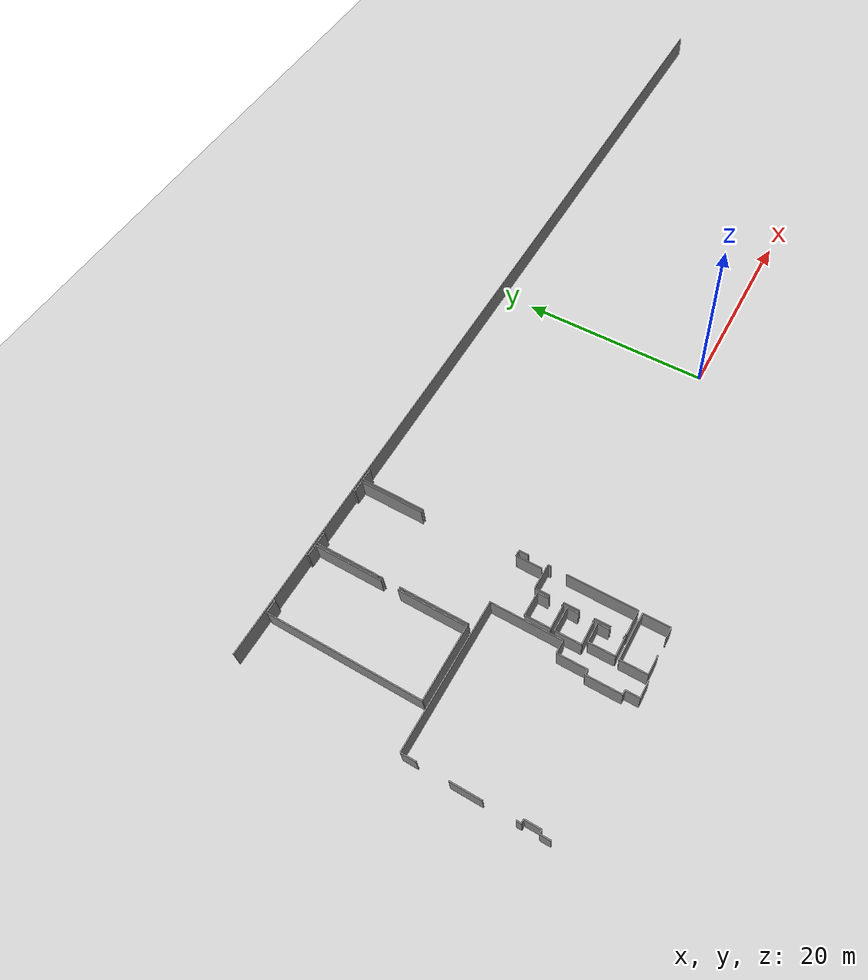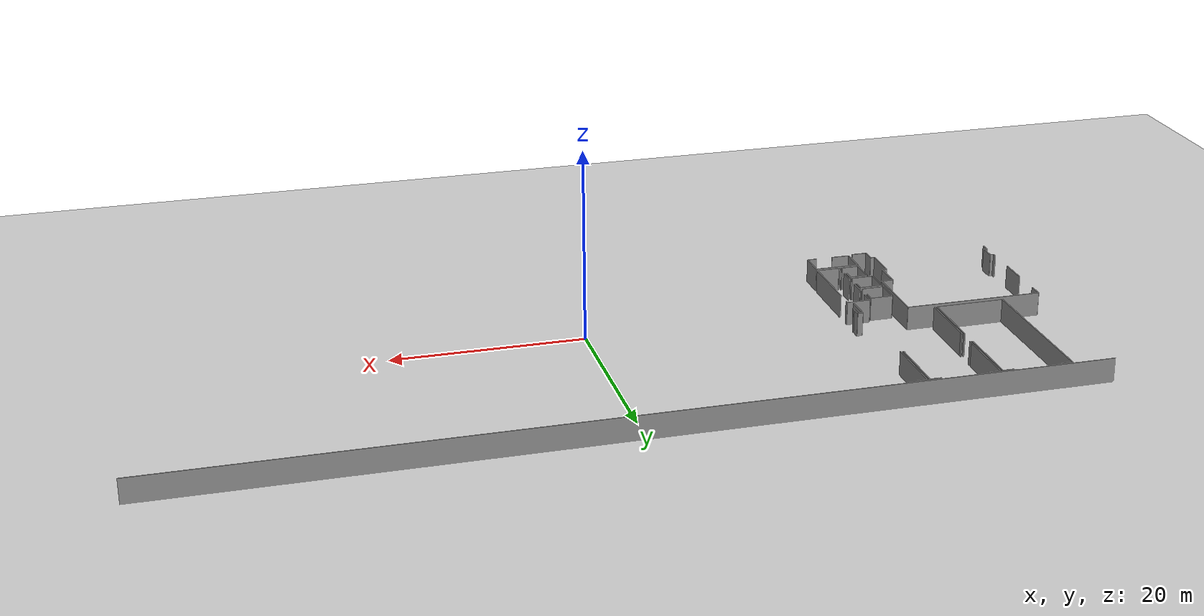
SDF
<sdf version="1.6">
 <world name="default">
  <model name="ground_plane">
   <static>1</static>
   <link name="link">
    <collision name="collision">
     <geometry><plane><normal>0 0 1</normal><size>100 100</size></plane></geometry>
     <surface><friction><ode><mu>100</mu><mu2>50</mu2></ode></friction></surface>
    </collision>
    <visual name="visual">
     <cast_shadows>0</cast_shadows>
     <geometry><plane><normal>0 0 1</normal><size>100 100</size></plane></geometry>
     <material>
      <script><uri>file://media/materials/scripts/gazebo.material</uri><name>Gazebo/Grey</name></script>
     </material>
    </visual>
   </link>
  </model>
  <model name="50045230">
   <static>1</static>
   <link name="Wall_0">
    <collision name="Wall_0_Collision">
     <geometry><box><size>16.1235034977 0.1 2.5</size></box></geometry>
     <pose>8.06175174883 0 1.25 0 0 0</pose>
    </collision>
    <visual name="Wall_0_Visual">
     <pose>8.06175174883 0 1.25 0 0 0</pose>
     <geometry><box><size>16.1235034977 0.1 2.5</size></box></geometry>
     <material>
      <script><uri>file://media/materials/scripts/gazebo.material</uri><name>Gazebo/Grey</name></script>
      <ambient>1 1 1 1</ambient>
     </material>
    </visual>
    <pose>4.35461551157 -16.3647212665 0 0 0 1.57079632679</pose>
   </link>
   <link name="Wall_1">
    <collision name="Wall_1_Collision">
     <geometry><box><size>1.18069750022 0.1 2.5</size></box></geometry>
     <pose>0.590348750111 0 1.25 0 0 0</pose>
    </collision>
    <visual name="Wall_1_Visual">
     <pose>0.590348750111 0 1.25 0 0 0</pose>
     <geometry><box><size>1.18069750022 0.1 2.5</size></box></geometry>
     <material>
      <script><uri>file://media/materials/scripts/gazebo.material</uri><name>Gazebo/Grey</name></script>
      <ambient>1 1 1 1</ambient>
     </material>
    </visual>
    <pose>4.35461551157 -0.241217768863 0 0 0 0.0</pose>
   </link>
   <link name="Wall_2">
    <collision name="Wall_2_Collision">
     <geometry><box><size>0.228522096817 0.1 2.5</size></box></geometry>
     <pose>0.114261048409 0 1.25 0 0 0</pose>
    </collision>
    <visual name="Wall_2_Visual">
     <pose>0.114261048409 0 1.25 0 0 0</pose>
     <geometry><box><size>0.228522096817 0.1 2.5</size></box></geometry>
     <material>
      <script><uri>file://media/materials/scripts/gazebo.material</uri><name>Gazebo/Grey</name></script>
      <ambient>1 1 1 1</ambient>
     </material>
    </visual>
    <pose>5.53531301179 -0.241217768863 0 0 0 1.57079632679</pose>
   </link>
   <link name="Wall_3">
    <collision name="Wall_3_Collision">
     <geometry><box><size>0.23207688499 0.1 2.5</size></box></geometry>
     <pose>0.116038442495 0 1.25 0 0 0</pose>
    </collision>
    <visual name="Wall_3_Visual">
     <pose>0.116038442495 0 1.25 0 0 0</pose>
     <geometry><box><size>0.23207688499 0.1 2.5</size></box></geometry>
     <material>
      <script><uri>file://media/materials/scripts/gazebo.material</uri><name>Gazebo/Grey</name></script>
      <ambient>1 1 1 1</ambient>
     </material>
    </visual>
    <pose>10.4685972552 -0.0126956720454 0 0 0 -1.57079632679</pose>
   </link>
   <link name="Wall_4">
    <collision name="Wall_4_Collision">
     <geometry><box><size>1.14362613785 0.1 2.5</size></box></geometry>
     <pose>0.571813068925 0 1.25 0 0 0</pose>
    </collision>
    <visual name="Wall_4_Visual">
     <pose>0.571813068925 0 1.25 0 0 0</pose>
     <geometry><box><size>1.14362613785 0.1 2.5</size></box></geometry>
     <material>
      <script><uri>file://media/materials/scripts/gazebo.material</uri><name>Gazebo/Grey</name></script>
      <ambient>1 1 1 1</ambient>
     </material>
    </visual>
    <pose>10.4685972552 -0.244772557035 0 0 0 0.0</pose>
   </link>
   <link name="Wall_5">
    <collision name="Wall_5_Collision">
     <geometry><box><size>7.14550509731 0.1 2.5</size></box></geometry>
     <pose>3.57275254866 0 1.25 0 0 0</pose>
    </collision>
    <visual name="Wall_5_Visual">
     <pose>3.57275254866 0 1.25 0 0 0</pose>
     <geometry><box><size>7.14550509731 0.1 2.5</size></box></geometry>
     <material>
      <script><uri>file://media/materials/scripts/gazebo.material</uri><name>Gazebo/Grey</name></script>
      <ambient>1 1 1 1</ambient>
     </material>
    </visual>
    <pose>11.612223393 -0.244772557035 0 0 0 -1.57079632679</pose>
   </link>
   <link name="Wall_6">
    <collision name="Wall_6_Collision">
     <geometry><box><size>7.14321987634 0.1 2.5</size></box></geometry>
     <pose>3.57160993817 0 1.25 0 0 0</pose>
    </collision>
    <visual name="Wall_6_Visual">
     <pose>3.57160993817 0 1.25 0 0 0</pose>
     <geometry><box><size>7.14321987634 0.1 2.5</size></box></geometry>
     <material>
      <script><uri>file://media/materials/scripts/gazebo.material</uri><name>Gazebo/Grey</name></script>
      <ambient>1 1 1 1</ambient>
     </material>
    </visual>
    <pose>11.612223393 -9.19166656087 0 0 0 -1.57079632679</pose>
   </link>
   <link name="Wall_7">
    <collision name="Wall_7_Collision">
     <geometry><box><size>7.25766920425 0.1 2.5</size></box></geometry>
     <pose>3.62883460212 0 1.25 0 0 0</pose>
    </collision>
    <visual name="Wall_7_Visual">
     <pose>3.62883460212 0 1.25 0 0 0</pose>
     <geometry><box><size>7.25766920425 0.1 2.5</size></box></geometry>
     <material>
      <script><uri>file://media/materials/scripts/gazebo.material</uri><name>Gazebo/Grey</name></script>
      <ambient>1 1 1 1</ambient>
     </material>
    </visual>
    <pose>11.612223393 -16.3348864372 0 0 0 -3.13748184163</pose>
   </link>
   <link name="Wall_8">
    <collision name="Wall_8_Collision">
     <geometry><box><size>0.450061574009 0.1 2.5</size></box></geometry>
     <pose>0.225030787005 0 1.25 0 0 0</pose>
    </collision>
    <visual name="Wall_8_Visual">
     <pose>0.225030787005 0 1.25 0 0 0</pose>
     <geometry><box><size>0.450061574009 0.1 2.5</size></box></geometry>
     <material>
      <script><uri>file://media/materials/scripts/gazebo.material</uri><name>Gazebo/Grey</name></script>
      <ambient>1 1 1 1</ambient>
     </material>
    </visual>
    <pose>11.8608046517 -9.64020465423 0 0 0 1.57079632679</pose>
   </link>
   <link name="Wall_9">
    <collision name="Wall_9_Collision">
     <geometry><box><size>0.403976284485 0.1 2.5</size></box></geometry>
     <pose>0.201988142242 0 1.25 0 0 0</pose>
    </collision>
    <visual name="Wall_9_Visual">
     <pose>0.201988142242 0 1.25 0 0 0</pose>
     <geometry><box><size>0.403976284485 0.1 2.5</size></box></geometry>
     <material>
      <script><uri>file://media/materials/scripts/gazebo.material</uri><name>Gazebo/Grey</name></script>
      <ambient>1 1 1 1</ambient>
     </material>
    </visual>
    <pose>11.8608046517 -7.42138205086 0 0 0 1.57079632679</pose>
   </link>
   <link name="Wall_30">
    <collision name="Wall_30_Collision">
     <geometry><box><size>6.68896873056 0.1 2.5</size></box></geometry>
     <pose>3.34448436528 0 1.25 0 0 0</pose>
    </collision>
    <visual name="Wall_30_Visual">
     <pose>3.34448436528 0 1.25 0 0 0</pose>
     <geometry><box><size>6.68896873056 0.1 2.5</size></box></geometry>
     <material>
      <script><uri>file://media/materials/scripts/gazebo.material</uri><name>Gazebo/Grey</name></script>
      <ambient>1 1 1 1</ambient>
     </material>
    </visual>
    <pose>11.869310752 -6.92904388894 0 0 0 1.57079632679</pose>
   </link>
   <link name="Wall_31">
    <collision name="Wall_31_Collision">
     <geometry><box><size>1.11658435639 0.1 2.5</size></box></geometry>
     <pose>0.558292178196 0 1.25 0 0 0</pose>
    </collision>
    <visual name="Wall_31_Visual">
     <pose>0.558292178196 0 1.25 0 0 0</pose>
     <geometry><box><size>1.11658435639 0.1 2.5</size></box></geometry>
     <material>
      <script><uri>file://media/materials/scripts/gazebo.material</uri><name>Gazebo/Grey</name></script>
      <ambient>1 1 1 1</ambient>
     </material>
    </visual>
    <pose>11.869310752 -0.240075158379 0 0 0 0.0</pose>
   </link>
   <link name="Wall_32">
    <collision name="Wall_32_Collision">
     <geometry><box><size>0.232330798431 0.1 2.5</size></box></geometry>
     <pose>0.116165399215 0 1.25 0 0 0</pose>
    </collision>
    <visual name="Wall_32_Visual">
     <pose>0.116165399215 0 1.25 0 0 0</pose>
     <geometry><box><size>0.232330798431 0.1 2.5</size></box></geometry>
     <material>
      <script><uri>file://media/materials/scripts/gazebo.material</uri><name>Gazebo/Grey</name></script>
      <ambient>1 1 1 1</ambient>
     </material>
    </visual>
    <pose>12.9858951084 -0.240075158379 0 0 0 1.57079632679</pose>
   </link>
   <link name="Wall_33">
    <collision name="Wall_33_Collision">
     <geometry><box><size>0.253913440908 0.1 2.5</size></box></geometry>
     <pose>0.126956720454 0 1.25 0 0 0</pose>
    </collision>
    <visual name="Wall_33_Visual">
     <pose>0.126956720454 0 1.25 0 0 0</pose>
     <geometry><box><size>0.253913440908 0.1 2.5</size></box></geometry>
     <material>
      <script><uri>file://media/materials/scripts/gazebo.material</uri><name>Gazebo/Grey</name></script>
      <ambient>1 1 1 1</ambient>
     </material>
    </visual>
    <pose>17.9011514975 -0.00774435994769 0 0 0 -1.57079632679</pose>
   </link>
   <link name="Wall_34">
    <collision name="Wall_34_Collision">
     <geometry><box><size>1.14540353194 0.1 2.5</size></box></geometry>
     <pose>0.572701765968 0 1.25 0 0 0</pose>
    </collision>
    <visual name="Wall_34_Visual">
     <pose>0.572701765968 0 1.25 0 0 0</pose>
     <geometry><box><size>1.14540353194 0.1 2.5</size></box></geometry>
     <material>
      <script><uri>file://media/materials/scripts/gazebo.material</uri><name>Gazebo/Grey</name></script>
      <ambient>1 1 1 1</ambient>
     </material>
    </visual>
    <pose>17.9011514975 -0.261657800856 0 0 0 0.0</pose>
   </link>
   <link name="Wall_35">
    <collision name="Wall_35_Collision">
     <geometry><box><size>6.66738811994 0.1 2.5</size></box></geometry>
     <pose>3.33369405997 0 1.25 0 0 0</pose>
    </collision>
    <visual name="Wall_35_Visual">
     <pose>3.33369405997 0 1.25 0 0 0</pose>
     <geometry><box><size>6.66738811994 0.1 2.5</size></box></geometry>
     <material>
      <script><uri>file://media/materials/scripts/gazebo.material</uri><name>Gazebo/Grey</name></script>
      <ambient>1 1 1 1</ambient>
     </material>
    </visual>
    <pose>19.0465550294 -0.261657800856 0 0 0 -1.57157702622</pose>
   </link>
   <link name="Wall_36">
    <collision name="Wall_36_Collision">
     <geometry><box><size>6.70242614293 0.1 2.5</size></box></geometry>
     <pose>3.35121307146 0 1.25 0 0 0</pose>
    </collision>
    <visual name="Wall_36_Visual">
     <pose>3.35121307146 0 1.25 0 0 0</pose>
     <geometry><box><size>6.70242614293 0.1 2.5</size></box></geometry>
     <material>
      <script><uri>file://media/materials/scripts/gazebo.material</uri><name>Gazebo/Grey</name></script>
      <ambient>1 1 1 1</ambient>
     </material>
    </visual>
    <pose>19.3159571902 -6.95722828088 0 0 0 1.57079632679</pose>
   </link>
   <link name="Wall_37">
    <collision name="Wall_37_Collision">
     <geometry><box><size>1.11493391903 0.1 2.5</size></box></geometry>
     <pose>0.557466959514 0 1.25 0 0 0</pose>
    </collision>
    <visual name="Wall_37_Visual">
     <pose>0.557466959514 0 1.25 0 0 0</pose>
     <geometry><box><size>1.11493391903 0.1 2.5</size></box></geometry>
     <material>
      <script><uri>file://media/materials/scripts/gazebo.material</uri><name>Gazebo/Grey</name></script>
      <ambient>1 1 1 1</ambient>
     </material>
    </visual>
    <pose>19.3159571902 -0.254802137951 0 0 0 0.0</pose>
   </link>
   <link name="Wall_135">
    <collision name="Wall_135_Collision">
     <geometry><box><size>6.65253215179 0.1 2.5</size></box></geometry>
     <pose>3.32626607589 0 1.25 0 0 0</pose>
    </collision>
    <visual name="Wall_135_Visual">
     <pose>3.32626607589 0 1.25 0 0 0</pose>
     <geometry><box><size>6.65253215179 0.1 2.5</size></box></geometry>
     <material>
      <script><uri>file://media/materials/scripts/gazebo.material</uri><name>Gazebo/Grey</name></script>
      <ambient>1 1 1 1</ambient>
     </material>
    </visual>
    <pose>11.8597889979 -16.3497403735 0 0 0 1.57079632679</pose>
   </link>
   <link name="Wall_140">
    <collision name="Wall_140_Collision">
     <geometry><box><size>1.01565376363 0.1 2.5</size></box></geometry>
     <pose>0.507826881816 0 1.25 0 0 0</pose>
    </collision>
    <visual name="Wall_140_Visual">
     <pose>0.507826881816 0 1.25 0 0 0</pose>
     <geometry><box><size>1.01565376363 0.1 2.5</size></box></geometry>
     <material>
      <script><uri>file://media/materials/scripts/gazebo.material</uri><name>Gazebo/Grey</name></script>
      <ambient>1 1 1 1</ambient>
     </material>
    </visual>
    <pose>0.0111721914 -30.9012657585 0 0 0 1.57079632679</pose>
   </link>
   <link name="Wall_141">
    <collision name="Wall_141_Collision">
     <geometry><box><size>0.357002297917 0.1 2.5</size></box></geometry>
     <pose>0.178501148958 0 1.25 0 0 0</pose>
    </collision>
    <visual name="Wall_141_Visual">
     <pose>0.178501148958 0 1.25 0 0 0</pose>
     <geometry><box><size>0.357002297917 0.1 2.5</size></box></geometry>
     <material>
      <script><uri>file://media/materials/scripts/gazebo.material</uri><name>Gazebo/Grey</name></script>
      <ambient>1 1 1 1</ambient>
     </material>
    </visual>
    <pose>0.0111721914 -29.8856119949 0 0 0 0.0</pose>
   </link>
   <link name="Wall_142">
    <collision name="Wall_142_Collision">
     <geometry><box><size>1.62504602181 0.1 2.5</size></box></geometry>
     <pose>0.812523010906 0 1.25 0 0 0</pose>
    </collision>
    <visual name="Wall_142_Visual">
     <pose>0.812523010906 0 1.25 0 0 0</pose>
     <geometry><box><size>1.62504602181 0.1 2.5</size></box></geometry>
     <material>
      <script><uri>file://media/materials/scripts/gazebo.material</uri><name>Gazebo/Grey</name></script>
      <ambient>1 1 1 1</ambient>
     </material>
    </visual>
    <pose>0.368174489317 -29.8856119949 0 0 0 1.57079632679</pose>
   </link>
   <link name="Wall_143">
    <collision name="Wall_143_Collision">
     <geometry><box><size>0.368174489317 0.1 2.5</size></box></geometry>
     <pose>0.184087244658 0 1.25 0 0 0</pose>
    </collision>
    <visual name="Wall_143_Visual">
     <pose>0.184087244658 0 1.25 0 0 0</pose>
     <geometry><box><size>0.368174489317 0.1 2.5</size></box></geometry>
     <material>
      <script><uri>file://media/materials/scripts/gazebo.material</uri><name>Gazebo/Grey</name></script>
      <ambient>1 1 1 1</ambient>
     </material>
    </visual>
    <pose>0.368174489317 -28.2605659731 0 0 0 3.14159265359</pose>
   </link>
   <link name="Wall_144">
    <collision name="Wall_144_Collision">
     <geometry><box><size>0.46973986568 0.1 2.5</size></box></geometry>
     <pose>0.23486993284 0 1.25 0 0 0</pose>
    </collision>
    <visual name="Wall_144_Visual">
     <pose>0.23486993284 0 1.25 0 0 0</pose>
     <geometry><box><size>0.46973986568 0.1 2.5</size></box></geometry>
     <material>
      <script><uri>file://media/materials/scripts/gazebo.material</uri><name>Gazebo/Grey</name></script>
      <ambient>1 1 1 1</ambient>
     </material>
    </visual>
    <pose>0.0 -28.2605659731 0 0 0 1.57079632679</pose>
   </link>
   <link name="Wall_145">
    <collision name="Wall_145_Collision">
     <geometry><box><size>3.13583099521 0.1 2.5</size></box></geometry>
     <pose>1.56791549761 0 1.25 0 0 0</pose>
    </collision>
    <visual name="Wall_145_Visual">
     <pose>1.56791549761 0 1.25 0 0 0</pose>
     <geometry><box><size>3.13583099521 0.1 2.5</size></box></geometry>
     <material>
      <script><uri>file://media/materials/scripts/gazebo.material</uri><name>Gazebo/Grey</name></script>
      <ambient>1 1 1 1</ambient>
     </material>
    </visual>
    <pose>0.0 -24.7438648165 0 0 0 1.57079632679</pose>
   </link>
   <link name="Wall_146">
    <collision name="Wall_146_Collision">
     <geometry><box><size>1.52462325593 0.1 2.5</size></box></geometry>
     <pose>0.762311627966 0 1.25 0 0 0</pose>
    </collision>
    <visual name="Wall_146_Visual">
     <pose>0.762311627966 0 1.25 0 0 0</pose>
     <geometry><box><size>1.52462325593 0.1 2.5</size></box></geometry>
     <material>
      <script><uri>file://media/materials/scripts/gazebo.material</uri><name>Gazebo/Grey</name></script>
      <ambient>1 1 1 1</ambient>
     </material>
    </visual>
    <pose>0.0 -18.5229855142 0 0 0 1.57079632679</pose>
   </link>
   <link name="Wall_147">
    <collision name="Wall_147_Collision">
     <geometry><box><size>14.4857618038 0.1 2.5</size></box></geometry>
     <pose>7.2428809019 0 1.25 0 0 0</pose>
    </collision>
    <visual name="Wall_147_Visual">
     <pose>7.2428809019 0 1.25 0 0 0</pose>
     <geometry><box><size>14.4857618038 0.1 2.5</size></box></geometry>
     <material>
      <script><uri>file://media/materials/scripts/gazebo.material</uri><name>Gazebo/Grey</name></script>
      <ambient>1 1 1 1</ambient>
     </material>
    </visual>
    <pose>0.0 -16.9983622583 0 0 0 0.0</pose>
   </link>
   <link name="Wall_148">
    <collision name="Wall_148_Collision">
     <geometry><box><size>7.29950359922 0.1 2.5</size></box></geometry>
     <pose>3.64975179961 0 1.25 0 0 0</pose>
    </collision>
    <visual name="Wall_148_Visual">
     <pose>3.64975179961 0 1.25 0 0 0</pose>
     <geometry><box><size>7.29950359922 0.1 2.5</size></box></geometry>
     <material>
      <script><uri>file://media/materials/scripts/gazebo.material</uri><name>Gazebo/Grey</name></script>
      <ambient>1 1 1 1</ambient>
     </material>
    </visual>
    <pose>14.4857618038 -16.9983622583 0 0 0 -1.57079632679</pose>
   </link>
   <link name="Wall_149">
    <collision name="Wall_149_Collision">
     <geometry><box><size>1.24569934109 0.1 2.5</size></box></geometry>
     <pose>0.622849670547 0 1.25 0 0 0</pose>
    </collision>
    <visual name="Wall_149_Visual">
     <pose>0.622849670547 0 1.25 0 0 0</pose>
     <geometry><box><size>1.24569934109 0.1 2.5</size></box></geometry>
     <material>
      <script><uri>file://media/materials/scripts/gazebo.material</uri><name>Gazebo/Grey</name></script>
      <ambient>1 1 1 1</ambient>
     </material>
    </visual>
    <pose>14.4857618038 -24.2978658575 0 0 0 3.14159265359</pose>
   </link>
   <link name="Wall_150">
    <collision name="Wall_150_Collision">
     <geometry><box><size>3.019665596 0.1 2.5</size></box></geometry>
     <pose>1.509832798 0 1.25 0 0 0</pose>
    </collision>
    <visual name="Wall_150_Visual">
     <pose>1.509832798 0 1.25 0 0 0</pose>
     <geometry><box><size>3.019665596 0.1 2.5</size></box></geometry>
     <material>
      <script><uri>file://media/materials/scripts/gazebo.material</uri><name>Gazebo/Grey</name></script>
      <ambient>1 1 1 1</ambient>
     </material>
    </visual>
    <pose>13.2400624627 -24.2978658575 0 0 0 -1.57079632679</pose>
   </link>
   <link name="Wall_151">
    <collision name="Wall_151_Collision">
     <geometry><box><size>0.495512079932 0.1 2.5</size></box></geometry>
     <pose>0.247756039966 0 1.25 0 0 0</pose>
    </collision>
    <visual name="Wall_151_Visual">
     <pose>0.247756039966 0 1.25 0 0 0</pose>
     <geometry><box><size>0.495512079932 0.1 2.5</size></box></geometry>
     <material>
      <script><uri>file://media/materials/scripts/gazebo.material</uri><name>Gazebo/Grey</name></script>
      <ambient>1 1 1 1</ambient>
     </material>
    </visual>
    <pose>13.2400624627 -27.3175314535 0 0 0 3.14159265359</pose>
   </link>
   <link name="Wall_152">
    <collision name="Wall_152_Collision">
     <geometry><box><size>3.55516904287 0.1 2.5</size></box></geometry>
     <pose>1.77758452144 0 1.25 0 0 0</pose>
    </collision>
    <visual name="Wall_152_Visual">
     <pose>1.77758452144 0 1.25 0 0 0</pose>
     <geometry><box><size>3.55516904287 0.1 2.5</size></box></geometry>
     <material>
      <script><uri>file://media/materials/scripts/gazebo.material</uri><name>Gazebo/Grey</name></script>
      <ambient>1 1 1 1</ambient>
     </material>
    </visual>
    <pose>12.7445503828 -27.3175314535 0 0 0 -1.57079632679</pose>
   </link>
   <link name="Wall_153">
    <collision name="Wall_153_Collision">
     <geometry><box><size>0.438000685566 0.1 2.5</size></box></geometry>
     <pose>0.219000342783 0 1.25 0 0 0</pose>
    </collision>
    <visual name="Wall_153_Visual">
     <pose>0.219000342783 0 1.25 0 0 0</pose>
     <geometry><box><size>0.438000685566 0.1 2.5</size></box></geometry>
     <material>
      <script><uri>file://media/materials/scripts/gazebo.material</uri><name>Gazebo/Grey</name></script>
      <ambient>1 1 1 1</ambient>
     </material>
    </visual>
    <pose>12.7445503828 -30.8727004964 0 0 0 0.0</pose>
   </link>
   <link name="Wall_154">
    <collision name="Wall_154_Collision">
     <geometry><box><size>1.40160219381 0.1 2.5</size></box></geometry>
     <pose>0.700801096906 0 1.25 0 0 0</pose>
    </collision>
    <visual name="Wall_154_Visual">
     <pose>0.700801096906 0 1.25 0 0 0</pose>
     <geometry><box><size>1.40160219381 0.1 2.5</size></box></geometry>
     <material>
      <script><uri>file://media/materials/scripts/gazebo.material</uri><name>Gazebo/Grey</name></script>
      <ambient>1 1 1 1</ambient>
     </material>
    </visual>
    <pose>13.1825510683 -30.8727004964 0 0 0 -1.57079632679</pose>
   </link>
   <link name="Wall_155">
    <collision name="Wall_155_Collision">
     <geometry><box><size>1.60600251374 0.1 2.5</size></box></geometry>
     <pose>0.803001256872 0 1.25 0 0 0</pose>
    </collision>
    <visual name="Wall_155_Visual">
     <pose>0.803001256872 0 1.25 0 0 0</pose>
     <geometry><box><size>1.60600251374 0.1 2.5</size></box></geometry>
     <material>
      <script><uri>file://media/materials/scripts/gazebo.material</uri><name>Gazebo/Grey</name></script>
      <ambient>1 1 1 1</ambient>
     </material>
    </visual>
    <pose>13.1825510683 -32.2743026902 0 0 0 0.0</pose>
   </link>
   <link name="Wall_173">
    <collision name="Wall_173_Collision">
     <geometry><box><size>2.74112255132 0.1 2.5</size></box></geometry>
     <pose>1.37056127566 0 1.25 0 0 0</pose>
    </collision>
    <visual name="Wall_173_Visual">
     <pose>1.37056127566 0 1.25 0 0 0</pose>
     <geometry><box><size>2.74112255132 0.1 2.5</size></box></geometry>
     <material>
      <script><uri>file://media/materials/scripts/gazebo.material</uri><name>Gazebo/Grey</name></script>
      <ambient>1 1 1 1</ambient>
     </material>
    </visual>
    <pose>15.2855891427 -32.0438762426 0 0 0 1.57079632679</pose>
   </link>
   <link name="Wall_174">
    <collision name="Wall_174_Collision">
     <geometry><box><size>4.65753424658 0.1 2.5</size></box></geometry>
     <pose>2.32876712329 0 1.25 0 0 0</pose>
    </collision>
    <visual name="Wall_174_Visual">
     <pose>2.32876712329 0 1.25 0 0 0</pose>
     <geometry><box><size>4.65753424658 0.1 2.5</size></box></geometry>
     <material>
      <script><uri>file://media/materials/scripts/gazebo.material</uri><name>Gazebo/Grey</name></script>
      <ambient>1 1 1 1</ambient>
     </material>
    </visual>
    <pose>15.2855891427 -29.3027536913 0 0 0 0.0</pose>
   </link>
   <link name="Wall_175">
    <collision name="Wall_175_Collision">
     <geometry><box><size>2.74632777686 0.1 2.5</size></box></geometry>
     <pose>1.37316388843 0 1.25 0 0 0</pose>
    </collision>
    <visual name="Wall_175_Visual">
     <pose>1.37316388843 0 1.25 0 0 0</pose>
     <geometry><box><size>2.74632777686 0.1 2.5</size></box></geometry>
     <material>
      <script><uri>file://media/materials/scripts/gazebo.material</uri><name>Gazebo/Grey</name></script>
      <ambient>1 1 1 1</ambient>
     </material>
    </visual>
    <pose>19.9431233892 -29.3027536913 0 0 0 -1.57079632679</pose>
   </link>
   <link name="Wall_176">
    <collision name="Wall_176_Collision">
     <geometry><box><size>0.985057194003 0.1 2.5</size></box></geometry>
     <pose>0.492528597001 0 1.25 0 0 0</pose>
    </collision>
    <visual name="Wall_176_Visual">
     <pose>0.492528597001 0 1.25 0 0 0</pose>
     <geometry><box><size>0.985057194003 0.1 2.5</size></box></geometry>
     <material>
      <script><uri>file://media/materials/scripts/gazebo.material</uri><name>Gazebo/Grey</name></script>
      <ambient>1 1 1 1</ambient>
     </material>
    </visual>
    <pose>19.9431233892 -32.0490814681 0 0 0 3.14159265359</pose>
   </link>
   <link name="Wall_177">
    <collision name="Wall_177_Collision">
     <geometry><box><size>1.8916622963 0.1 2.5</size></box></geometry>
     <pose>0.945831148151 0 1.25 0 0 0</pose>
    </collision>
    <visual name="Wall_177_Visual">
     <pose>0.945831148151 0 1.25 0 0 0</pose>
     <geometry><box><size>1.8916622963 0.1 2.5</size></box></geometry>
     <material>
      <script><uri>file://media/materials/scripts/gazebo.material</uri><name>Gazebo/Grey</name></script>
      <ambient>1 1 1 1</ambient>
     </material>
    </visual>
    <pose>17.1772442774 -32.0490814681 0 0 0 3.13884098268</pose>
   </link>
   <link name="Wall_184">
    <collision name="Wall_184_Collision">
     <geometry><box><size>2.67167722523 0.1 2.5</size></box></geometry>
     <pose>1.33583861262 0 1.25 0 0 0</pose>
    </collision>
    <visual name="Wall_184_Visual">
     <pose>1.33583861262 0 1.25 0 0 0</pose>
     <geometry><box><size>2.67167722523 0.1 2.5</size></box></geometry>
     <material>
      <script><uri>file://media/materials/scripts/gazebo.material</uri><name>Gazebo/Grey</name></script>
      <ambient>1 1 1 1</ambient>
     </material>
    </visual>
    <pose>19.4387243389 -19.5254357789 0 0 0 1.57079632679</pose>
   </link>
   <link name="Wall_185">
    <collision name="Wall_185_Collision">
     <geometry><box><size>0.540962585854 0.1 2.5</size></box></geometry>
     <pose>0.270481292927 0 1.25 0 0 0</pose>
    </collision>
    <visual name="Wall_185_Visual">
     <pose>0.270481292927 0 1.25 0 0 0</pose>
     <geometry><box><size>0.540962585854 0.1 2.5</size></box></geometry>
     <material>
      <script><uri>file://media/materials/scripts/gazebo.material</uri><name>Gazebo/Grey</name></script>
      <ambient>1 1 1 1</ambient>
     </material>
    </visual>
    <pose>19.4387243389 -16.8537585537 0 0 0 0.0</pose>
   </link>
   <link name="Wall_186">
    <collision name="Wall_186_Collision">
     <geometry><box><size>0.894283138878 0.1 2.5</size></box></geometry>
     <pose>0.447141569439 0 1.25 0 0 0</pose>
    </collision>
    <visual name="Wall_186_Visual">
     <pose>0.447141569439 0 1.25 0 0 0</pose>
     <geometry><box><size>0.894283138878 0.1 2.5</size></box></geometry>
     <material>
      <script><uri>file://media/materials/scripts/gazebo.material</uri><name>Gazebo/Grey</name></script>
      <ambient>1 1 1 1</ambient>
     </material>
    </visual>
    <pose>19.9796869247 -16.8537585537 0 0 0 -1.57079632679</pose>
   </link>
   <link name="Wall_187">
    <collision name="Wall_187_Collision">
     <geometry><box><size>0.110325390075 0.1 2.5</size></box></geometry>
     <pose>0.0551626950373 0 1.25 0 0 0</pose>
    </collision>
    <visual name="Wall_187_Visual">
     <pose>0.0551626950373 0 1.25 0 0 0</pose>
     <geometry><box><size>0.110325390075 0.1 2.5</size></box></geometry>
     <material>
      <script><uri>file://media/materials/scripts/gazebo.material</uri><name>Gazebo/Grey</name></script>
      <ambient>1 1 1 1</ambient>
     </material>
    </visual>
    <pose>19.9796869247 -17.7480416926 0 0 0 0.0</pose>
   </link>
   <link name="Wall_190">
    <collision name="Wall_190_Collision">
     <geometry><box><size>0.124798456206 0.1 2.5</size></box></geometry>
     <pose>0.0623992281031 0 1.25 0 0 0</pose>
    </collision>
    <visual name="Wall_190_Visual">
     <pose>0.0623992281031 0 1.25 0 0 0</pose>
     <geometry><box><size>0.124798456206 0.1 2.5</size></box></geometry>
     <material>
      <script><uri>file://media/materials/scripts/gazebo.material</uri><name>Gazebo/Grey</name></script>
      <ambient>1 1 1 1</ambient>
     </material>
    </visual>
    <pose>17.5235822108 -28.9062678533 0 0 0 1.57079632679</pose>
   </link>
   <link name="Wall_191">
    <collision name="Wall_191_Collision">
     <geometry><box><size>1.64053474171 0.1 2.5</size></box></geometry>
     <pose>0.820267370853 0 1.25 0 0 0</pose>
    </collision>
    <visual name="Wall_191_Visual">
     <pose>0.820267370853 0 1.25 0 0 0</pose>
     <geometry><box><size>1.64053474171 0.1 2.5</size></box></geometry>
     <material>
      <script><uri>file://media/materials/scripts/gazebo.material</uri><name>Gazebo/Grey</name></script>
      <ambient>1 1 1 1</ambient>
     </material>
    </visual>
    <pose>17.5235822108 -27.3952289664 0 0 0 1.57079632679</pose>
   </link>
   <link name="Wall_192">
    <collision name="Wall_192_Collision">
     <geometry><box><size>1.62237993068 0.1 2.5</size></box></geometry>
     <pose>0.811189965341 0 1.25 0 0 0</pose>
    </collision>
    <visual name="Wall_192_Visual">
     <pose>0.811189965341 0 1.25 0 0 0</pose>
     <geometry><box><size>1.62237993068 0.1 2.5</size></box></geometry>
     <material>
      <script><uri>file://media/materials/scripts/gazebo.material</uri><name>Gazebo/Grey</name></script>
      <ambient>1 1 1 1</ambient>
     </material>
    </visual>
    <pose>17.5235822108 -24.3463633247 0 0 0 1.57079632679</pose>
   </link>
   <link name="Wall_193">
    <collision name="Wall_193_Collision">
     <geometry><box><size>1.50253278657 0.1 2.5</size></box></geometry>
     <pose>0.751266393287 0 1.25 0 0 0</pose>
    </collision>
    <visual name="Wall_193_Visual">
     <pose>0.751266393287 0 1.25 0 0 0</pose>
     <geometry><box><size>1.50253278657 0.1 2.5</size></box></geometry>
     <material>
      <script><uri>file://media/materials/scripts/gazebo.material</uri><name>Gazebo/Grey</name></script>
      <ambient>1 1 1 1</ambient>
     </material>
    </visual>
    <pose>17.5235822108 -21.3412977516 0 0 0 1.57079632679</pose>
   </link>
   <link name="Wall_194">
    <collision name="Wall_194_Collision">
     <geometry><box><size>2.4597864588 0.1 2.5</size></box></geometry>
     <pose>1.2298932294 0 1.25 0 0 0</pose>
    </collision>
    <visual name="Wall_194_Visual">
     <pose>1.2298932294 0 1.25 0 0 0</pose>
     <geometry><box><size>2.4597864588 0.1 2.5</size></box></geometry>
     <material>
      <script><uri>file://media/materials/scripts/gazebo.material</uri><name>Gazebo/Grey</name></script>
      <ambient>1 1 1 1</ambient>
     </material>
    </visual>
    <pose>17.5235822108 -19.838764965 0 0 0 0.0</pose>
   </link>
   <link name="Wall_195">
    <collision name="Wall_195_Collision">
     <geometry><box><size>0.326659641728 0.1 2.5</size></box></geometry>
     <pose>0.163329820864 0 1.25 0 0 0</pose>
    </collision>
    <visual name="Wall_195_Visual">
     <pose>0.163329820864 0 1.25 0 0 0</pose>
     <geometry><box><size>0.326659641728 0.1 2.5</size></box></geometry>
     <material>
      <script><uri>file://media/materials/scripts/gazebo.material</uri><name>Gazebo/Grey</name></script>
      <ambient>1 1 1 1</ambient>
     </material>
    </visual>
    <pose>19.9833686696 -19.838764965 0 0 0 -1.57079632679</pose>
   </link>
   <link name="Wall_196">
    <collision name="Wall_196_Collision">
     <geometry><box><size>7.14474335699 0.1 2.5</size></box></geometry>
     <pose>3.57237167849 0 1.25 0 0 0</pose>
    </collision>
    <visual name="Wall_196_Visual">
     <pose>3.57237167849 0 1.25 0 0 0</pose>
     <geometry><box><size>7.14474335699 0.1 2.5</size></box></geometry>
     <material>
      <script><uri>file://media/materials/scripts/gazebo.material</uri><name>Gazebo/Grey</name></script>
      <ambient>1 1 1 1</ambient>
     </material>
    </visual>
    <pose>19.9833686696 -21.7231835667 0 0 0 -1.57079632679</pose>
   </link>
   <link name="Wall_197">
    <collision name="Wall_197_Collision">
     <geometry><box><size>2.46008525254 0.1 2.5</size></box></geometry>
     <pose>1.23004262627 0 1.25 0 0 0</pose>
    </collision>
    <visual name="Wall_197_Visual">
     <pose>1.23004262627 0 1.25 0 0 0</pose>
     <geometry><box><size>2.46008525254 0.1 2.5</size></box></geometry>
     <material>
      <script><uri>file://media/materials/scripts/gazebo.material</uri><name>Gazebo/Grey</name></script>
      <ambient>1 1 1 1</ambient>
     </material>
    </visual>
    <pose>19.9833686696 -28.8679269237 0 0 0 -3.12600681897</pose>
   </link>
   <link name="Wall_198">
    <collision name="Wall_198_Collision">
     <geometry><box><size>2.58991709726 0.1 2.5</size></box></geometry>
     <pose>1.29495854863 0 1.25 0 0 0</pose>
    </collision>
    <visual name="Wall_198_Visual">
     <pose>1.29495854863 0 1.25 0 0 0</pose>
     <geometry><box><size>2.58991709726 0.1 2.5</size></box></geometry>
     <material>
      <script><uri>file://media/materials/scripts/gazebo.material</uri><name>Gazebo/Grey</name></script>
      <ambient>1 1 1 1</ambient>
     </material>
    </visual>
    <pose>14.9047189813 -22.8395140097 0 0 0 1.57079632679</pose>
   </link>
   <link name="Wall_199">
    <collision name="Wall_199_Collision">
     <geometry><box><size>2.3486993284 0.1 2.5</size></box></geometry>
     <pose>1.1743496642 0 1.25 0 0 0</pose>
    </collision>
    <visual name="Wall_199_Visual">
     <pose>1.1743496642 0 1.25 0 0 0</pose>
     <geometry><box><size>2.3486993284 0.1 2.5</size></box></geometry>
     <material>
      <script><uri>file://media/materials/scripts/gazebo.material</uri><name>Gazebo/Grey</name></script>
      <ambient>1 1 1 1</ambient>
     </material>
    </visual>
    <pose>14.9047189813 -20.2495969124 0 0 0 0.0</pose>
   </link>
   <link name="Wall_200">
    <collision name="Wall_200_Collision">
     <geometry><box><size>1.10452346795 0.1 2.5</size></box></geometry>
     <pose>0.552261733975 0 1.25 0 0 0</pose>
    </collision>
    <visual name="Wall_200_Visual">
     <pose>0.552261733975 0 1.25 0 0 0</pose>
     <geometry><box><size>1.10452346795 0.1 2.5</size></box></geometry>
     <material>
      <script><uri>file://media/materials/scripts/gazebo.material</uri><name>Gazebo/Grey</name></script>
      <ambient>1 1 1 1</ambient>
     </material>
    </visual>
    <pose>17.2534183097 -20.2495969124 0 0 0 -1.57079632679</pose>
   </link>
   <link name="Wall_201">
    <collision name="Wall_201_Collision">
     <geometry><box><size>0.139652392499 0.1 2.5</size></box></geometry>
     <pose>0.0698261962497 0 1.25 0 0 0</pose>
    </collision>
    <visual name="Wall_201_Visual">
     <pose>0.0698261962497 0 1.25 0 0 0</pose>
     <geometry><box><size>0.139652392499 0.1 2.5</size></box></geometry>
     <material>
      <script><uri>file://media/materials/scripts/gazebo.material</uri><name>Gazebo/Grey</name></script>
      <ambient>1 1 1 1</ambient>
     </material>
    </visual>
    <pose>17.2534183097 -22.6871659451 0 0 0 -1.57079632679</pose>
   </link>
   <link name="Wall_202">
    <collision name="Wall_202_Collision">
     <geometry><box><size>2.34873364078 0.1 2.5</size></box></geometry>
     <pose>1.17436682039 0 1.25 0 0 0</pose>
    </collision>
    <visual name="Wall_202_Visual">
     <pose>1.17436682039 0 1.25 0 0 0</pose>
     <geometry><box><size>2.34873364078 0.1 2.5</size></box></geometry>
     <material>
      <script><uri>file://media/materials/scripts/gazebo.material</uri><name>Gazebo/Grey</name></script>
      <ambient>1 1 1 1</ambient>
     </material>
    </visual>
    <pose>17.2534183097 -22.8268183376 0 0 0 -3.13618730083</pose>
   </link>
   <link name="Wall_203">
    <collision name="Wall_203_Collision">
     <geometry><box><size>2.6385415212 0.1 2.5</size></box></geometry>
     <pose>1.3192707606 0 1.25 0 0 0</pose>
    </collision>
    <visual name="Wall_203_Visual">
     <pose>1.3192707606 0 1.25 0 0 0</pose>
     <geometry><box><size>2.6385415212 0.1 2.5</size></box></geometry>
     <material>
      <script><uri>file://media/materials/scripts/gazebo.material</uri><name>Gazebo/Grey</name></script>
      <ambient>1 1 1 1</ambient>
     </material>
    </visual>
    <pose>14.9124633412 -25.8732718016 0 0 0 1.57079632679</pose>
   </link>
   <link name="Wall_204">
    <collision name="Wall_204_Collision">
     <geometry><box><size>2.35149237625 0.1 2.5</size></box></geometry>
     <pose>1.17574618812 0 1.25 0 0 0</pose>
    </collision>
    <visual name="Wall_204_Visual">
     <pose>1.17574618812 0 1.25 0 0 0</pose>
     <geometry><box><size>2.35149237625 0.1 2.5</size></box></geometry>
     <material>
      <script><uri>file://media/materials/scripts/gazebo.material</uri><name>Gazebo/Grey</name></script>
      <ambient>1 1 1 1</ambient>
     </material>
    </visual>
    <pose>14.9124633412 -23.2347302804 0 0 0 0.0</pose>
   </link>
   <link name="Wall_205">
    <collision name="Wall_205_Collision">
     <geometry><box><size>1.11506087575 0.1 2.5</size></box></geometry>
     <pose>0.557530437874 0 1.25 0 0 0</pose>
    </collision>
    <visual name="Wall_205_Visual">
     <pose>0.557530437874 0 1.25 0 0 0</pose>
     <geometry><box><size>1.11506087575 0.1 2.5</size></box></geometry>
     <material>
      <script><uri>file://media/materials/scripts/gazebo.material</uri><name>Gazebo/Grey</name></script>
      <ambient>1 1 1 1</ambient>
     </material>
    </visual>
    <pose>17.2639557175 -23.2347302804 0 0 0 -1.57079632679</pose>
   </link>
   <link name="Wall_206">
    <collision name="Wall_206_Collision">
     <geometry><box><size>0.121497581474 0.1 2.5</size></box></geometry>
     <pose>0.0607487907372 0 1.25 0 0 0</pose>
    </collision>
    <visual name="Wall_206_Visual">
     <pose>0.0607487907372 0 1.25 0 0 0</pose>
     <geometry><box><size>0.121497581474 0.1 2.5</size></box></geometry>
     <material>
      <script><uri>file://media/materials/scripts/gazebo.material</uri><name>Gazebo/Grey</name></script>
      <ambient>1 1 1 1</ambient>
     </material>
    </visual>
    <pose>17.2639557175 -25.7296837508 0 0 0 -1.57079632679</pose>
   </link>
   <link name="Wall_207">
    <collision name="Wall_207_Collision">
     <geometry><box><size>2.35159613548 0.1 2.5</size></box></geometry>
     <pose>1.17579806774 0 1.25 0 0 0</pose>
    </collision>
    <visual name="Wall_207_Visual">
     <pose>1.17579806774 0 1.25 0 0 0</pose>
     <geometry><box><size>2.35159613548 0.1 2.5</size></box></geometry>
     <material>
      <script><uri>file://media/materials/scripts/gazebo.material</uri><name>Gazebo/Grey</name></script>
      <ambient>1 1 1 1</ambient>
     </material>
    </visual>
    <pose>17.2639557175 -25.8511813323 0 0 0 -3.13219869604</pose>
   </link>
   <link name="Wall_208">
    <collision name="Wall_208_Collision">
     <geometry><box><size>2.64958675587 0.1 2.5</size></box></geometry>
     <pose>1.32479337794 0 1.25 0 0 0</pose>
    </collision>
    <visual name="Wall_208_Visual">
     <pose>1.32479337794 0 1.25 0 0 0</pose>
     <geometry><box><size>2.64958675587 0.1 2.5</size></box></geometry>
     <material>
      <script><uri>file://media/materials/scripts/gazebo.material</uri><name>Gazebo/Grey</name></script>
      <ambient>1 1 1 1</ambient>
     </material>
    </visual>
    <pose>15.3828379905 -28.8870973885 0 0 0 1.57079632679</pose>
   </link>
   <link name="Wall_209">
    <collision name="Wall_209_Collision">
     <geometry><box><size>1.88149859713 0.1 2.5</size></box></geometry>
     <pose>0.940749298564 0 1.25 0 0 0</pose>
    </collision>
    <visual name="Wall_209_Visual">
     <pose>0.940749298564 0 1.25 0 0 0</pose>
     <geometry><box><size>1.88149859713 0.1 2.5</size></box></geometry>
     <material>
      <script><uri>file://media/materials/scripts/gazebo.material</uri><name>Gazebo/Grey</name></script>
      <ambient>1 1 1 1</ambient>
     </material>
    </visual>
    <pose>15.3828379905 -26.2375106326 0 0 0 0.0</pose>
   </link>
   <link name="Wall_210">
    <collision name="Wall_210_Collision">
     <geometry><box><size>1.1520052814 0.1 2.5</size></box></geometry>
     <pose>0.5760026407 0 1.25 0 0 0</pose>
    </collision>
    <visual name="Wall_210_Visual">
     <pose>0.5760026407 0 1.25 0 0 0</pose>
     <geometry><box><size>1.1520052814 0.1 2.5</size></box></geometry>
     <material>
      <script><uri>file://media/materials/scripts/gazebo.material</uri><name>Gazebo/Grey</name></script>
      <ambient>1 1 1 1</ambient>
     </material>
    </visual>
    <pose>17.2643365877 -26.2375106326 0 0 0 -1.57079632679</pose>
   </link>
   <link name="Wall_211">
    <collision name="Wall_211_Collision">
     <geometry><box><size>0.132542816154 0.1 2.5</size></box></geometry>
     <pose>0.066271408077 0 1.25 0 0 0</pose>
    </collision>
    <visual name="Wall_211_Visual">
     <pose>0.066271408077 0 1.25 0 0 0</pose>
     <geometry><box><size>0.132542816154 0.1 2.5</size></box></geometry>
     <material>
      <script><uri>file://media/materials/scripts/gazebo.material</uri><name>Gazebo/Grey</name></script>
      <ambient>1 1 1 1</ambient>
     </material>
    </visual>
    <pose>17.2643365877 -28.7435093377 0 0 0 -1.57079632679</pose>
   </link>
   <link name="Wall_212">
    <collision name="Wall_212_Collision">
     <geometry><box><size>1.88153101707 0.1 2.5</size></box></geometry>
     <pose>0.940765508536 0 1.25 0 0 0</pose>
    </collision>
    <visual name="Wall_212_Visual">
     <pose>0.940765508536 0 1.25 0 0 0</pose>
     <geometry><box><size>1.88153101707 0.1 2.5</size></box></geometry>
     <material>
      <script><uri>file://media/materials/scripts/gazebo.material</uri><name>Gazebo/Grey</name></script>
      <ambient>1 1 1 1</ambient>
     </material>
    </visual>
    <pose>17.2643365877 -28.8760521538 0 0 0 -3.13572227568</pose>
   </link>
   <link name="Wall_406">
    <collision name="Wall_406_Collision">
     <geometry><box><size>93.572816027 0.1 2.5</size></box></geometry>
     <pose>46.7864080135 0 1.25 0 0 0</pose>
    </collision>
    <visual name="Wall_406_Visual">
     <pose>46.7864080135 0 1.25 0 0 0</pose>
     <geometry><box><size>93.572816027 0.1 2.5</size></box></geometry>
     <material>
      <script><uri>file://media/materials/scripts/gazebo.material</uri><name>Gazebo/Grey</name></script>
      <ambient>1 1 1 1</ambient>
     </material>
    </visual>
   </link>
   <pose>-46.75 23.3491252682 0 0 0 0</pose>
  </model>
 </world>
</sdf>
